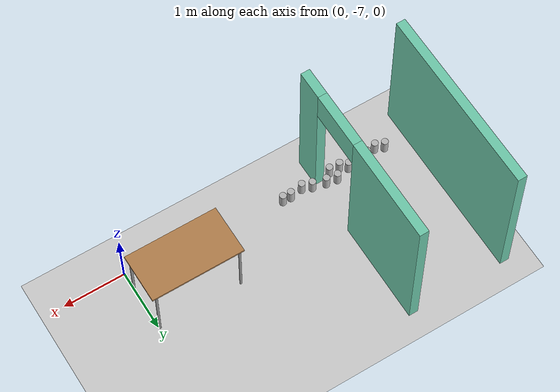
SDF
<sdf version="1.6">
 <world name="default">
  <model name="ground_plane">
   <static>1</static>
   <link name="link">
    <collision name="collision">
     <geometry><plane><normal>0 0 1</normal><size>100 100</size></plane></geometry>
     <surface>
      <contact><collide_bitmask>65535</collide_bitmask></contact>
      <friction><ode><mu>100</mu><mu2>50</mu2></ode></friction>
     </surface>
    </collision>
    <visual name="visual">
     <cast_shadows>0</cast_shadows>
     <geometry><plane><normal>0 0 1</normal><size>100 100</size></plane></geometry>
     <material>
      <script><uri>file://media/materials/scripts/gazebo.material</uri><name>Gazebo/Grey</name></script>
     </material>
    </visual>
   </link>
  </model>
  <model name="beer">
   <link name="link">
    <pose>0 0 0.115 0 -0 0</pose>
    <inertial>
     <mass>0.39</mass>
     <inertia><ixx>0.00058</ixx><ixy>0</ixy><ixz>0</ixz><iyy>0.00058</iyy><iyz>0</iyz><izz>0.00019</izz></inertia>
    </inertial>
    <collision name="collision">
     <geometry><cylinder><radius>0.055</radius><length>0.23</length></cylinder></geometry>
    </collision>
    <visual name="visual">
     <geometry><cylinder><radius>0.055</radius><length>0.23</length></cylinder></geometry>
     <material>
      <script>
       <uri>model://beer/materials/scripts</uri>
       <uri>model://beer/materials/textures</uri>
       <name>Beer/Diffuse</name>
      </script>
     </material>
    </visual>
   </link>
   <pose>-2.60192 -6.78865 -8e-06 -1e-06 -0 -2.8e-05</pose>
  </model>
  <model name="beer_0">
   <link name="link">
    <pose>0 0 0.115 0 -0 0</pose>
    <inertial>
     <mass>0.39</mass>
     <inertia><ixx>0.00058</ixx><ixy>0</ixy><ixz>0</ixz><iyy>0.00058</iyy><iyz>0</iyz><izz>0.00019</izz></inertia>
    </inertial>
    <collision name="collision">
     <geometry><cylinder><radius>0.055</radius><length>0.23</length></cylinder></geometry>
    </collision>
    <visual name="visual">
     <geometry><cylinder><radius>0.055</radius><length>0.23</length></cylinder></geometry>
     <material>
      <script>
       <uri>model://beer/materials/scripts</uri>
       <uri>model://beer/materials/textures</uri>
       <name>Beer/Diffuse</name>
      </script>
     </material>
    </visual>
   </link>
   <pose>-2.73761 -6.78616 -8e-06 -1e-06 -0 -2.4e-05</pose>
  </model>
  <model name="beer_1">
   <link name="link">
    <pose>0 0 0.115 0 -0 0</pose>
    <inertial>
     <mass>0.39</mass>
     <inertia><ixx>0.00058</ixx><ixy>0</ixy><ixz>0</ixz><iyy>0.00058</iyy><iyz>0</iyz><izz>0.00019</izz></inertia>
    </inertial>
    <collision name="collision">
     <geometry><cylinder><radius>0.055</radius><length>0.23</length></cylinder></geometry>
    </collision>
    <visual name="visual">
     <geometry><cylinder><radius>0.055</radius><length>0.23</length></cylinder></geometry>
     <material>
      <script>
       <uri>model://beer/materials/scripts</uri>
       <uri>model://beer/materials/textures</uri>
       <name>Beer/Diffuse</name>
      </script>
     </material>
    </visual>
   </link>
   <pose>-2.94651 -6.81855 -2e-06 0 0 -2.3e-05</pose>
  </model>
  <model name="beer_2">
   <link name="link">
    <pose>0 0 0.115 0 -0 0</pose>
    <inertial>
     <mass>0.39</mass>
     <inertia><ixx>0.00058</ixx><ixy>0</ixy><ixz>0</ixz><iyy>0.00058</iyy><iyz>0</iyz><izz>0.00019</izz></inertia>
    </inertial>
    <collision name="collision">
     <geometry><cylinder><radius>0.055</radius><length>0.23</length></cylinder></geometry>
    </collision>
    <visual name="visual">
     <geometry><cylinder><radius>0.055</radius><length>0.23</length></cylinder></geometry>
     <material>
      <script>
       <uri>model://beer/materials/scripts</uri>
       <uri>model://beer/materials/textures</uri>
       <name>Beer/Diffuse</name>
      </script>
     </material>
    </visual>
   </link>
   <pose>-3.10064 -6.75988 -8e-06 -1e-06 -0 -2.3e-05</pose>
  </model>
  <model name="beer_3">
   <link name="link">
    <pose>0 0 0.115 0 -0 0</pose>
    <inertial>
     <mass>0.39</mass>
     <inertia><ixx>0.00058</ixx><ixy>0</ixy><ixz>0</ixz><iyy>0.00058</iyy><iyz>0</iyz><izz>0.00019</izz></inertia>
    </inertial>
    <collision name="collision">
     <geometry><cylinder><radius>0.055</radius><length>0.23</length></cylinder></geometry>
    </collision>
    <visual name="visual">
     <geometry><cylinder><radius>0.055</radius><length>0.23</length></cylinder></geometry>
     <material>
      <script>
       <uri>model://beer/materials/scripts</uri>
       <uri>model://beer/materials/textures</uri>
       <name>Beer/Diffuse</name>
      </script>
     </material>
    </visual>
   </link>
   <pose>-3.31312 -6.70602 -2e-06 0 -0 1.4e-05</pose>
  </model>
  <model name="beer_4">
   <link name="link">
    <pose>0 0 0.115 0 -0 0</pose>
    <inertial>
     <mass>0.39</mass>
     <inertia><ixx>0.00058</ixx><ixy>0</ixy><ixz>0</ixz><iyy>0.00058</iyy><iyz>0</iyz><izz>0.00019</izz></inertia>
    </inertial>
    <collision name="collision">
     <geometry><cylinder><radius>0.055</radius><length>0.23</length></cylinder></geometry>
    </collision>
    <visual name="visual">
     <geometry><cylinder><radius>0.055</radius><length>0.23</length></cylinder></geometry>
     <material>
      <script>
       <uri>model://beer/materials/scripts</uri>
       <uri>model://beer/materials/textures</uri>
       <name>Beer/Diffuse</name>
      </script>
     </material>
    </visual>
   </link>
   <pose>-3.49304 -6.67884 -8e-06 -1e-06 -0 -2e-05</pose>
  </model>
  <model name="beer_5">
   <link name="link">
    <pose>0 0 0.115 0 -0 0</pose>
    <inertial>
     <mass>0.39</mass>
     <inertia><ixx>0.00058</ixx><ixy>0</ixy><ixz>0</ixz><iyy>0.00058</iyy><iyz>0</iyz><izz>0.00019</izz></inertia>
    </inertial>
    <collision name="collision">
     <geometry><cylinder><radius>0.055</radius><length>0.23</length></cylinder></geometry>
    </collision>
    <visual name="visual">
     <geometry><cylinder><radius>0.055</radius><length>0.23</length></cylinder></geometry>
     <material>
      <script>
       <uri>model://beer/materials/scripts</uri>
       <uri>model://beer/materials/textures</uri>
       <name>Beer/Diffuse</name>
      </script>
     </material>
    </visual>
   </link>
   <pose>-3.4471 -6.83729 -2e-06 0 0 -1.9e-05</pose>
  </model>
  <model name="beer_6">
   <link name="link">
    <pose>0 0 0.115 0 -0 0</pose>
    <inertial>
     <mass>0.39</mass>
     <inertia><ixx>0.00058</ixx><ixy>0</ixy><ixz>0</ixz><iyy>0.00058</iyy><iyz>0</iyz><izz>0.00019</izz></inertia>
    </inertial>
    <collision name="collision">
     <geometry><cylinder><radius>0.055</radius><length>0.23</length></cylinder></geometry>
    </collision>
    <visual name="visual">
     <geometry><cylinder><radius>0.055</radius><length>0.23</length></cylinder></geometry>
     <material>
      <script>
       <uri>model://beer/materials/scripts</uri>
       <uri>model://beer/materials/textures</uri>
       <name>Beer/Diffuse</name>
      </script>
     </material>
    </visual>
   </link>
   <pose>-3.61904 -6.82708 -8e-06 -1e-06 -0 -2e-05</pose>
  </model>
  <model name="beer_7">
   <link name="link">
    <pose>0 0 0.115 0 -0 0</pose>
    <inertial>
     <mass>0.39</mass>
     <inertia><ixx>0.00058</ixx><ixy>0</ixy><ixz>0</ixz><iyy>0.00058</iyy><iyz>0</iyz><izz>0.00019</izz></inertia>
    </inertial>
    <collision name="collision">
     <geometry><cylinder><radius>0.055</radius><length>0.23</length></cylinder></geometry>
    </collision>
    <visual name="visual">
     <geometry><cylinder><radius>0.055</radius><length>0.23</length></cylinder></geometry>
     <material>
      <script>
       <uri>model://beer/materials/scripts</uri>
       <uri>model://beer/materials/textures</uri>
       <name>Beer/Diffuse</name>
      </script>
     </material>
    </visual>
   </link>
   <pose>-3.73869 -6.75497 -2e-06 0 0 -1.8e-05</pose>
  </model>
  <model name="beer_8">
   <link name="link">
    <pose>0 0 0.115 0 -0 0</pose>
    <inertial>
     <mass>0.39</mass>
     <inertia><ixx>0.00058</ixx><ixy>0</ixy><ixz>0</ixz><iyy>0.00058</iyy><iyz>0</iyz><izz>0.00019</izz></inertia>
    </inertial>
    <collision name="collision">
     <geometry><cylinder><radius>0.055</radius><length>0.23</length></cylinder></geometry>
    </collision>
    <visual name="visual">
     <geometry><cylinder><radius>0.055</radius><length>0.23</length></cylinder></geometry>
     <material>
      <script>
       <uri>model://beer/materials/scripts</uri>
       <uri>model://beer/materials/textures</uri>
       <name>Beer/Diffuse</name>
      </script>
     </material>
    </visual>
   </link>
   <pose>-3.89641 -6.78632 -8e-06 -1e-06 -0 -1.7e-05</pose>
  </model>
  <model name="beer_9">
   <link name="link">
    <pose>0 0 0.115 0 -0 0</pose>
    <inertial>
     <mass>0.39</mass>
     <inertia><ixx>0.00058</ixx><ixy>0</ixy><ixz>0</ixz><iyy>0.00058</iyy><iyz>0</iyz><izz>0.00019</izz></inertia>
    </inertial>
    <collision name="collision">
     <geometry><cylinder><radius>0.055</radius><length>0.23</length></cylinder></geometry>
    </collision>
    <visual name="visual">
     <geometry><cylinder><radius>0.055</radius><length>0.23</length></cylinder></geometry>
     <material>
      <script>
       <uri>model://beer/materials/scripts</uri>
       <uri>model://beer/materials/textures</uri>
       <name>Beer/Diffuse</name>
      </script>
     </material>
    </visual>
   </link>
   <pose>-4.08773 -6.78622 -2e-06 0 0 -1.6e-05</pose>
  </model>
  <model name="beer_10">
   <link name="link">
    <pose>0 0 0.115 0 -0 0</pose>
    <inertial>
     <mass>0.39</mass>
     <inertia><ixx>0.00058</ixx><ixy>0</ixy><ixz>0</ixz><iyy>0.00058</iyy><iyz>0</iyz><izz>0.00019</izz></inertia>
    </inertial>
    <collision name="collision">
     <geometry><cylinder><radius>0.055</radius><length>0.23</length></cylinder></geometry>
    </collision>
    <visual name="visual">
     <geometry><cylinder><radius>0.055</radius><length>0.23</length></cylinder></geometry>
     <material>
      <script>
       <uri>model://beer/materials/scripts</uri>
       <uri>model://beer/materials/textures</uri>
       <name>Beer/Diffuse</name>
      </script>
     </material>
    </visual>
   </link>
   <pose>-4.25212 -6.82846 -8e-06 -1e-06 -0 -1.6e-05</pose>
  </model>
  <model name="beer_11">
   <link name="link">
    <pose>0 0 0.115 0 -0 0</pose>
    <inertial>
     <mass>0.39</mass>
     <inertia><ixx>0.00058</ixx><ixy>0</ixy><ixz>0</ixz><iyy>0.00058</iyy><iyz>0</iyz><izz>0.00019</izz></inertia>
    </inertial>
    <collision name="collision">
     <geometry><cylinder><radius>0.055</radius><length>0.23</length></cylinder></geometry>
    </collision>
    <visual name="visual">
     <geometry><cylinder><radius>0.055</radius><length>0.23</length></cylinder></geometry>
     <material>
      <script>
       <uri>model://beer/materials/scripts</uri>
       <uri>model://beer/materials/textures</uri>
       <name>Beer/Diffuse</name>
      </script>
     </material>
    </visual>
   </link>
   <pose>-4.39553 -6.77114 -2e-06 0 0 -1.4e-05</pose>
  </model>
  <model name="table">
   <static>1</static>
   <link name="link">
    <collision name="surface">
     <pose>0 0 1 0 -0 0</pose>
     <geometry><box><size>1.5 0.8 0.03</size></box></geometry>
     <surface><friction><ode><mu>0.6</mu><mu2>0.6</mu2></ode></friction></surface>
    </collision>
    <visual name="visual1">
     <pose>0 0 1 0 -0 0</pose>
     <geometry><box><size>1.5 0.8 0.03</size></box></geometry>
     <material>
      <script><uri>file://media/materials/scripts/gazebo.material</uri><name>Gazebo/Wood</name></script>
     </material>
    </visual>
    <collision name="front_left_leg">
     <pose>0.68 0.38 0.5 0 -0 0</pose>
     <geometry><cylinder><radius>0.02</radius><length>1</length></cylinder></geometry>
    </collision>
    <visual name="front_left_leg">
     <pose>0.68 0.38 0.5 0 -0 0</pose>
     <geometry><cylinder><radius>0.02</radius><length>1</length></cylinder></geometry>
     <material>
      <script><uri>file://media/materials/scripts/gazebo.material</uri><name>Gazebo/Grey</name></script>
     </material>
    </visual>
    <collision name="front_right_leg">
     <pose>0.68 -0.38 0.5 0 -0 0</pose>
     <geometry><cylinder><radius>0.02</radius><length>1</length></cylinder></geometry>
    </collision>
    <visual name="front_right_leg">
     <pose>0.68 -0.38 0.5 0 -0 0</pose>
     <geometry><cylinder><radius>0.02</radius><length>1</length></cylinder></geometry>
     <material>
      <script><uri>file://media/materials/scripts/gazebo.material</uri><name>Gazebo/Grey</name></script>
     </material>
    </visual>
    <collision name="back_right_leg">
     <pose>-0.68 -0.38 0.5 0 -0 0</pose>
     <geometry><cylinder><radius>0.02</radius><length>1</length></cylinder></geometry>
    </collision>
    <visual name="back_right_leg">
     <pose>-0.68 -0.38 0.5 0 -0 0</pose>
     <geometry><cylinder><radius>0.02</radius><length>1</length></cylinder></geometry>
     <material>
      <script><uri>file://media/materials/scripts/gazebo.material</uri><name>Gazebo/Grey</name></script>
     </material>
    </visual>
    <collision name="back_left_leg">
     <pose>-0.68 0.38 0.5 0 -0 0</pose>
     <geometry><cylinder><radius>0.02</radius><length>1</length></cylinder></geometry>
    </collision>
    <visual name="back_left_leg">
     <pose>-0.68 0.38 0.5 0 -0 0</pose>
     <geometry><cylinder><radius>0.02</radius><length>1</length></cylinder></geometry>
     <material>
      <script><uri>file://media/materials/scripts/gazebo.material</uri><name>Gazebo/Grey</name></script>
     </material>
    </visual>
   </link>
   <pose>-0.699943 -6.36243 0 0 -0 0</pose>
  </model>
  <model name="someHouse">
   <link name="Wall_47">
    <pose>-4.175 -2.725 0 0 -0 1.5708</pose>
    <visual name="Wall_47_Visual">
     <pose>0 0 1.25 0 -0 0</pose>
     <geometry><box><size>3 0.15 2.5</size></box></geometry>
     <material>
      <script><uri>file://media/materials/scripts/gazebo.material</uri><name>Gazebo/Grey</name></script>
      <ambient>0.435294 0.796078 0.67451 1</ambient>
      <shader type="pixel"/>
      <diffuse>0.7 0.7 0.7 1</diffuse>
      <specular>0.01 0.01 0.01 1</specular>
      <emissive>0 0 0 1</emissive>
     </material>
     <meta><layer>0</layer></meta>
    </visual>
    <collision name="Wall_47_Collision">
     <pose>0 0 1.25 0 -0 0</pose>
     <geometry><box><size>3 0.15 2.5</size></box></geometry>
     <surface>
      <friction>
       <ode><mu>1</mu><mu2>1</mu2><fdir1>0 0 0</fdir1><slip1>0</slip1><slip2>0</slip2></ode>
       <torsional>
        <coefficient>1</coefficient>
        <patch_radius>0</patch_radius>
        <surface_radius>0</surface_radius>
        <use_patch_radius>1</use_patch_radius>
        <ode><slip>0</slip></ode>
       </torsional>
      </friction>
      <bounce><restitution_coefficient>0</restitution_coefficient><threshold>1e+06</threshold></bounce>
      <contact>
       <collide_without_contact>0</collide_without_contact>
       <collide_without_contact_bitmask>1</collide_without_contact_bitmask>
       <collide_bitmask>1</collide_bitmask>
       <ode>
        <soft_cfm>0</soft_cfm>
        <soft_erp>0.2</soft_erp>
        <kp>1e+13</kp>
        <kd>1</kd>
        <max_vel>0.01</max_vel>
        <min_depth>0</min_depth>
       </ode>
       <bullet>
        <split_impulse>1</split_impulse>
        <split_impulse_penetration_threshold>-0.01</split_impulse_penetration_threshold>
        <soft_cfm>0</soft_cfm>
        <soft_erp>0.2</soft_erp>
        <kp>1e+13</kp>
        <kd>1</kd>
       </bullet>
      </contact>
     </surface>
    </collision>
   </link>
   <link name="Wall_49">
    <pose>-2.575 -2.725 0 0 0 -1.5708</pose>
    <visual name="Wall_49_Visual_0">
     <pose>-0.676974 0 1.25 0 -0 0</pose>
     <geometry><box><size>1.64605 0.15 2.5</size></box></geometry>
     <material>
      <script><uri>file://media/materials/scripts/gazebo.material</uri><name>Gazebo/Grey</name></script>
      <ambient>0.435294 0.796078 0.67451 1</ambient>
      <shader type="pixel"/>
      <diffuse>0.7 0.7 0.7 1</diffuse>
      <specular>0.01 0.01 0.01 1</specular>
      <emissive>0 0 0 1</emissive>
     </material>
     <meta><layer>0</layer></meta>
    </visual>
    <visual name="Wall_49_Visual_1">
     <pose>1.27303 0 1.25 0 -0 0</pose>
     <geometry><box><size>0.453948 0.15 2.5</size></box></geometry>
     <material>
      <script><uri>file://media/materials/scripts/gazebo.material</uri><name>Gazebo/Grey</name></script>
      <ambient>0.435294 0.796078 0.67451 1</ambient>
      <shader type="pixel"/>
      <diffuse>0.7 0.7 0.7 1</diffuse>
      <specular>0.01 0.01 0.01 1</specular>
      <emissive>0 0 0 1</emissive>
     </material>
     <meta><layer>0</layer></meta>
    </visual>
    <visual name="Wall_49_Visual_2">
     <pose>0.596052 0 2.25 0 -0 0</pose>
     <geometry><box><size>0.9 0.15 0.5</size></box></geometry>
     <material>
      <script><uri>file://media/materials/scripts/gazebo.material</uri><name>Gazebo/Grey</name></script>
      <ambient>0.435294 0.796078 0.67451 1</ambient>
      <shader type="pixel"/>
      <diffuse>0.7 0.7 0.7 1</diffuse>
      <specular>0.01 0.01 0.01 1</specular>
      <emissive>0 0 0 1</emissive>
     </material>
     <meta><layer>0</layer></meta>
    </visual>
    <collision name="Wall_49_Collision_0">
     <pose>-0.676974 0 1.25 0 -0 0</pose>
     <geometry><box><size>1.64605 0.15 2.5</size></box></geometry>
     <surface>
      <friction>
       <ode><mu>1</mu><mu2>1</mu2><fdir1>0 0 0</fdir1><slip1>0</slip1><slip2>0</slip2></ode>
       <torsional>
        <coefficient>1</coefficient>
        <patch_radius>0</patch_radius>
        <surface_radius>0</surface_radius>
        <use_patch_radius>1</use_patch_radius>
        <ode><slip>0</slip></ode>
       </torsional>
      </friction>
      <bounce><restitution_coefficient>0</restitution_coefficient><threshold>1e+06</threshold></bounce>
      <contact>
       <collide_without_contact>0</collide_without_contact>
       <collide_without_contact_bitmask>1</collide_without_contact_bitmask>
       <collide_bitmask>1</collide_bitmask>
       <ode>
        <soft_cfm>0</soft_cfm>
        <soft_erp>0.2</soft_erp>
        <kp>1e+13</kp>
        <kd>1</kd>
        <max_vel>0.01</max_vel>
        <min_depth>0</min_depth>
       </ode>
       <bullet>
        <split_impulse>1</split_impulse>
        <split_impulse_penetration_threshold>-0.01</split_impulse_penetration_threshold>
        <soft_cfm>0</soft_cfm>
        <soft_erp>0.2</soft_erp>
        <kp>1e+13</kp>
        <kd>1</kd>
       </bullet>
      </contact>
     </surface>
    </collision>
    <collision name="Wall_49_Collision_2">
     <pose>0.596052 0 2.25 0 -0 0</pose>
     <geometry><box><size>0.9 0.15 0.5</size></box></geometry>
     <surface>
      <friction>
       <ode><mu>1</mu><mu2>1</mu2><fdir1>0 0 0</fdir1><slip1>0</slip1><slip2>0</slip2></ode>
       <torsional>
        <coefficient>1</coefficient>
        <patch_radius>0</patch_radius>
        <surface_radius>0</surface_radius>
        <use_patch_radius>1</use_patch_radius>
        <ode><slip>0</slip></ode>
       </torsional>
      </friction>
      <bounce><restitution_coefficient>0</restitution_coefficient><threshold>1e+06</threshold></bounce>
      <contact>
       <collide_without_contact>0</collide_without_contact>
       <collide_without_contact_bitmask>1</collide_without_contact_bitmask>
       <collide_bitmask>1</collide_bitmask>
       <ode>
        <soft_cfm>0</soft_cfm>
        <soft_erp>0.2</soft_erp>
        <kp>1e+13</kp>
        <kd>1</kd>
        <max_vel>0.01</max_vel>
        <min_depth>0</min_depth>
       </ode>
       <bullet>
        <split_impulse>1</split_impulse>
        <split_impulse_penetration_threshold>-0.01</split_impulse_penetration_threshold>
        <soft_cfm>0</soft_cfm>
        <soft_erp>0.2</soft_erp>
        <kp>1e+13</kp>
        <kd>1</kd>
       </bullet>
      </contact>
     </surface>
    </collision>
    <collision name="Wall_49_Collision_1">
     <pose>1.27303 0 1.25 0 -0 0</pose>
     <geometry><box><size>0.453948 0.15 2.5</size></box></geometry>
     <surface>
      <friction>
       <ode><mu>1</mu><mu2>1</mu2><fdir1>0 0 0</fdir1><slip1>0</slip1><slip2>0</slip2></ode>
       <torsional>
        <coefficient>1</coefficient>
        <patch_radius>0</patch_radius>
        <surface_radius>0</surface_radius>
        <use_patch_radius>1</use_patch_radius>
        <ode><slip>0</slip></ode>
       </torsional>
      </friction>
      <bounce><restitution_coefficient>0</restitution_coefficient><threshold>1e+06</threshold></bounce>
      <contact>
       <collide_without_contact>0</collide_without_contact>
       <collide_without_contact_bitmask>1</collide_without_contact_bitmask>
       <collide_bitmask>1</collide_bitmask>
       <ode>
        <soft_cfm>0</soft_cfm>
        <soft_erp>0.2</soft_erp>
        <kp>1e+13</kp>
        <kd>1</kd>
        <max_vel>0.01</max_vel>
        <min_depth>0</min_depth>
       </ode>
       <bullet>
        <split_impulse>1</split_impulse>
        <split_impulse_penetration_threshold>-0.01</split_impulse_penetration_threshold>
        <soft_cfm>0</soft_cfm>
        <soft_erp>0.2</soft_erp>
        <kp>1e+13</kp>
        <kd>1</kd>
       </bullet>
      </contact>
     </surface>
    </collision>
   </link>
   <static>1</static>
   <pose>-0.67479 -3.02645 0 0 -0 0</pose>
  </model>
 </world>
</sdf>
